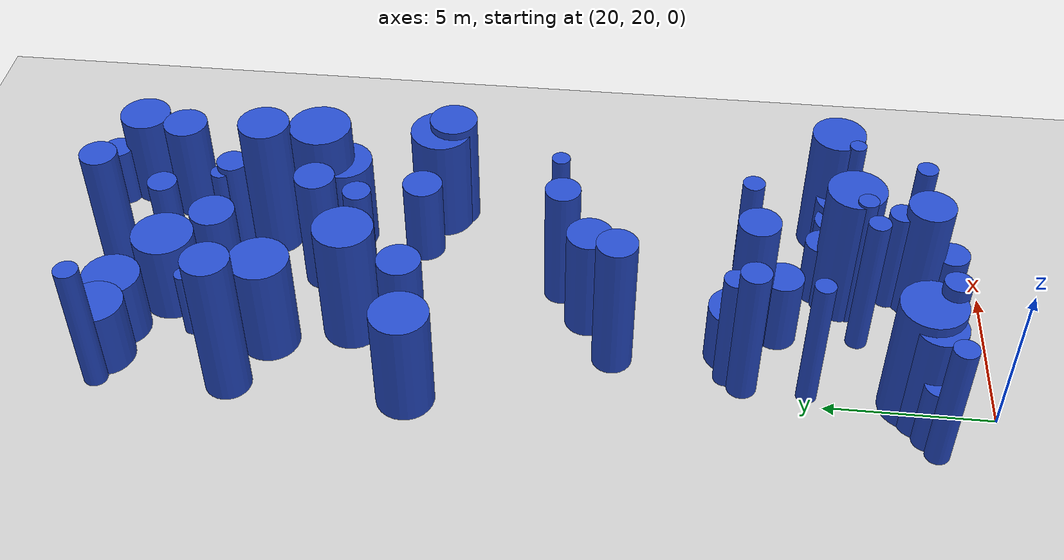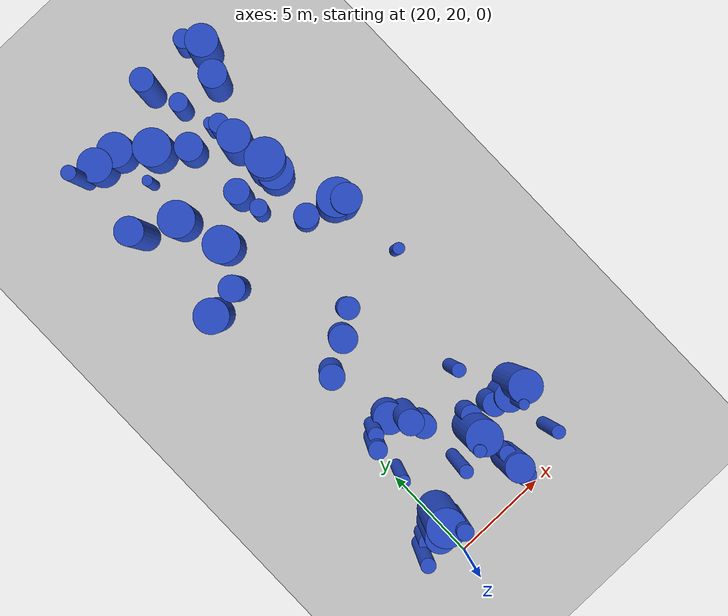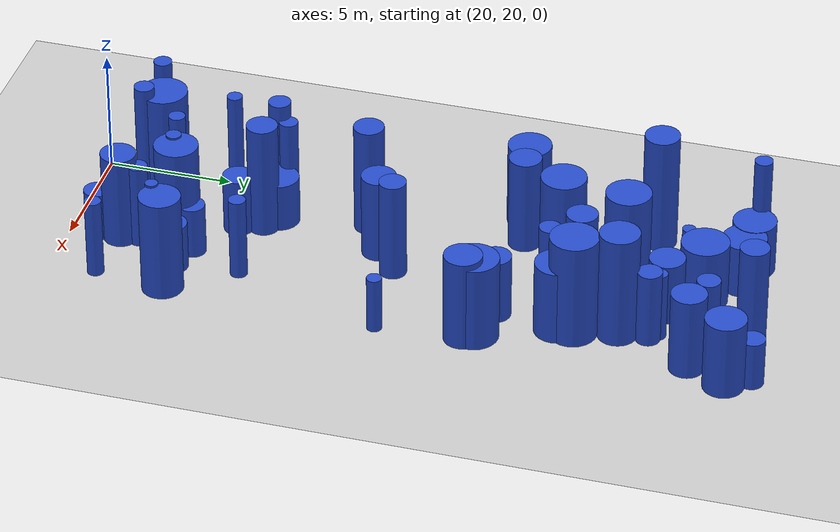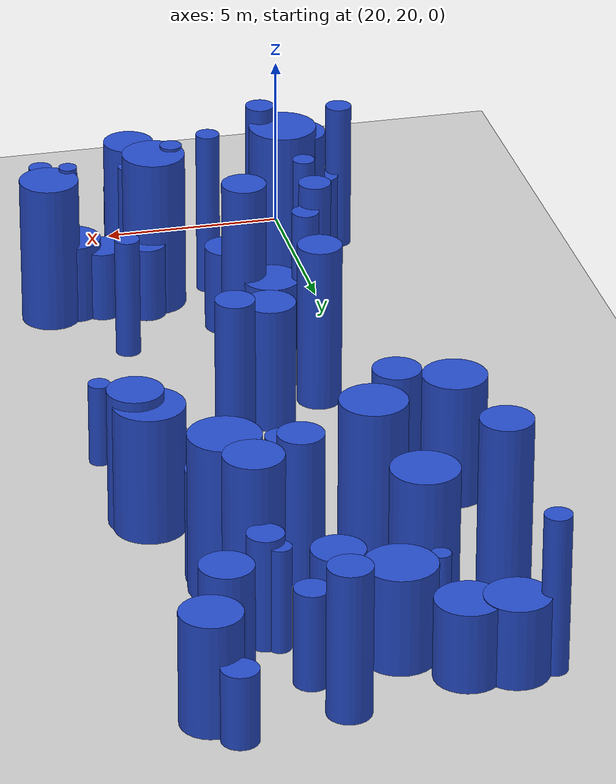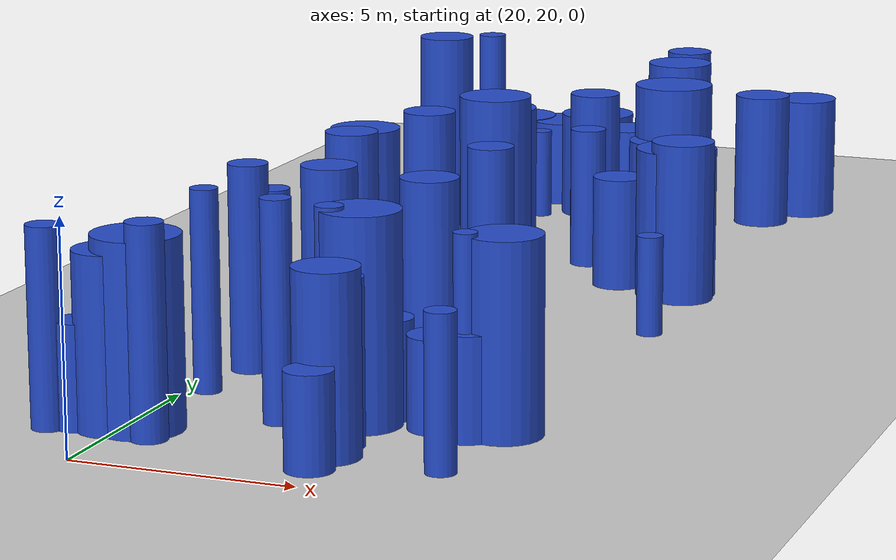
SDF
<sdf version="1.6">
 <world name="default">
  <model name="ground_plane">
   <static>1</static>
   <link name="link">
    <collision name="collision">
     <geometry><plane><normal>0 0 1</normal><size>100 100</size></plane></geometry>
     <surface><friction><ode><mu>100</mu><mu2>50</mu2></ode></friction></surface>
    </collision>
    <visual name="visual">
     <cast_shadows>0</cast_shadows>
     <geometry><plane><normal>0 0 1</normal><size>100 100</size></plane></geometry>
     <material>
      <script><uri>file://media/materials/scripts/gazebo.material</uri><name>Gazebo/Grey</name></script>
     </material>
    </visual>
   </link>
  </model>
  <model name="6">
   <static>0</static>
   <link name="link">
    <inertial>
     <mass>2</mass>
     <inertia><ixx>1.20336</ixx><ixy>0</ixy><ixz>0</ixz><iyy>1.20336</iyy><iyz>0</iyz><izz>0.750486</izz></inertia>
    </inertial>
    <collision name="collision">
     <geometry><cylinder><length>2.22906</length><radius>0.866306</radius></cylinder></geometry>
     <surface><contact><collide_without_contact>1</collide_without_contact></contact></surface>
    </collision>
    <visual name="visual">
     <geometry><cylinder><length>2.22906</length><radius>0.866306</radius></cylinder></geometry>
     <material>
      <script><uri>file://media/materials/scripts/gazebo.material</uri><name>Gazebo/Blue</name></script>
     </material>
    </visual>
    <gravity>0</gravity>
   </link>
   <pose>20.0201 46.401 1.11453 0 -0 0</pose>
  </model>
  <model name="15">
   <static>0</static>
   <link name="link">
    <inertial>
     <mass>2</mass>
     <inertia><ixx>2.62862</ixx><ixy>0</ixy><ixz>0</ixz><iyy>2.62862</iyy><iyz>0</iyz><izz>0.931065</izz></inertia>
    </inertial>
    <collision name="collision">
     <geometry><cylinder><length>3.60257</length><radius>0.964917</radius></cylinder></geometry>
     <surface><contact><collide_without_contact>1</collide_without_contact></contact></surface>
    </collision>
    <visual name="visual">
     <geometry><cylinder><length>3.60257</length><radius>0.964917</radius></cylinder></geometry>
     <material>
      <script><uri>file://media/materials/scripts/gazebo.material</uri><name>Gazebo/Blue</name></script>
     </material>
    </visual>
    <gravity>0</gravity>
   </link>
   <pose>27.3165 37.1361 1.80129 0 -0 0</pose>
  </model>
  <model name="29">
   <static>0</static>
   <link name="link">
    <inertial>
     <mass>2</mass>
     <inertia><ixx>3.4064</ixx><ixy>0</ixy><ixz>0</ixz><iyy>3.4064</iyy><iyz>0</iyz><izz>0.0952166</izz></inertia>
    </inertial>
    <collision name="collision">
     <geometry><cylinder><length>4.48918</length><radius>0.308572</radius></cylinder></geometry>
     <surface><contact><collide_without_contact>1</collide_without_contact></contact></surface>
    </collision>
    <visual name="visual">
     <geometry><cylinder><length>4.48918</length><radius>0.308572</radius></cylinder></geometry>
     <material>
      <script><uri>file://media/materials/scripts/gazebo.material</uri><name>Gazebo/Blue</name></script>
     </material>
    </visual>
    <gravity>0</gravity>
   </link>
   <pose>20.4595 25.4538 2.24459 0 -0 0</pose>
  </model>
  <model name="43">
   <static>0</static>
   <link name="link">
    <inertial>
     <mass>2</mass>
     <inertia>
      <ixx>0.804984</ixx>
      <ixy>0</ixy>
      <ixz>0</ixz>
      <iyy>0.804984</iyy>
      <iyz>0</iyz>
      <izz>0.236242</izz>
     </inertia>
    </inertial>
    <collision name="collision">
     <geometry><cylinder><length>2.03007</length><radius>0.486048</radius></cylinder></geometry>
     <surface><contact><collide_without_contact>1</collide_without_contact></contact></surface>
    </collision>
    <visual name="visual">
     <geometry><cylinder><length>2.03007</length><radius>0.486048</radius></cylinder></geometry>
     <material>
      <script><uri>file://media/materials/scripts/gazebo.material</uri><name>Gazebo/Blue</name></script>
     </material>
    </visual>
    <gravity>0</gravity>
   </link>
   <pose>27.3471 47.9507 1.01503 0 -0 0</pose>
  </model>
  <model name="55">
   <static>0</static>
   <link name="link">
    <inertial>
     <mass>2</mass>
     <inertia><ixx>3.00682</ixx><ixy>0</ixy><ixz>0</ixz><iyy>3.00682</iyy><iyz>0</iyz><izz>0.336828</izz></inertia>
    </inertial>
    <collision name="collision">
     <geometry><cylinder><length>4.1268</length><radius>0.580369</radius></cylinder></geometry>
     <surface><contact><collide_without_contact>1</collide_without_contact></contact></surface>
    </collision>
    <visual name="visual">
     <geometry><cylinder><length>4.1268</length><radius>0.580369</radius></cylinder></geometry>
     <material>
      <script><uri>file://media/materials/scripts/gazebo.material</uri><name>Gazebo/Blue</name></script>
     </material>
    </visual>
    <gravity>0</gravity>
   </link>
   <pose>24.4847 47.3087 2.0634 0 -0 0</pose>
  </model>
  <model name="66">
   <static>0</static>
   <link name="link">
    <inertial>
     <mass>2</mass>
     <inertia><ixx>4.02171</ixx><ixy>0</ixy><ixz>0</ixz><iyy>4.02171</iyy><iyz>0</iyz><izz>0.386224</izz></inertia>
    </inertial>
    <collision name="collision">
     <geometry><cylinder><length>4.79287</length><radius>0.621469</radius></cylinder></geometry>
     <surface><contact><collide_without_contact>1</collide_without_contact></contact></surface>
    </collision>
    <visual name="visual">
     <geometry><cylinder><length>4.79287</length><radius>0.621469</radius></cylinder></geometry>
     <material>
      <script><uri>file://media/materials/scripts/gazebo.material</uri><name>Gazebo/Blue</name></script>
     </material>
    </visual>
    <gravity>0</gravity>
   </link>
   <pose>22.5786 27.2507 2.39644 0 -0 0</pose>
  </model>
  <model name="76">
   <static>0</static>
   <link name="link">
    <inertial>
     <mass>2</mass>
     <inertia><ixx>1.41605</ixx><ixy>0</ixy><ixz>0</ixz><iyy>1.41605</iyy><iyz>0</iyz><izz>0.391763</izz></inertia>
    </inertial>
    <collision name="collision">
     <geometry><cylinder><length>2.70574</length><radius>0.62591</radius></cylinder></geometry>
     <surface><contact><collide_without_contact>1</collide_without_contact></contact></surface>
    </collision>
    <visual name="visual">
     <geometry><cylinder><length>2.70574</length><radius>0.62591</radius></cylinder></geometry>
     <material>
      <script><uri>file://media/materials/scripts/gazebo.material</uri><name>Gazebo/Blue</name></script>
     </material>
    </visual>
    <gravity>0</gravity>
   </link>
   <pose>25.7306 37.5397 1.35287 0 -0 0</pose>
  </model>
  <model name="79">
   <static>0</static>
   <link name="link">
    <inertial>
     <mass>2</mass>
     <inertia><ixx>2.18613</ixx><ixy>0</ixy><ixz>0</ixz><iyy>2.18613</iyy><iyz>0</iyz><izz>0.163149</izz></inertia>
    </inertial>
    <collision name="collision">
     <geometry><cylinder><length>3.5535</length><radius>0.403917</radius></cylinder></geometry>
     <surface><contact><collide_without_contact>1</collide_without_contact></contact></surface>
    </collision>
    <visual name="visual">
     <geometry><cylinder><length>3.5535</length><radius>0.403917</radius></cylinder></geometry>
     <material>
      <script><uri>file://media/materials/scripts/gazebo.material</uri><name>Gazebo/Blue</name></script>
     </material>
    </visual>
    <gravity>0</gravity>
   </link>
   <pose>24.8327 22.8486 1.77675 0 -0 0</pose>
  </model>
  <model name="104">
   <static>0</static>
   <link name="link">
    <inertial>
     <mass>2</mass>
     <inertia><ixx>1.19968</ixx><ixy>0</ixy><ixz>0</ixz><iyy>1.19968</iyy><iyz>0</iyz><izz>0.772075</izz></inertia>
    </inertial>
    <collision name="collision">
     <geometry><cylinder><length>2.2095</length><radius>0.878678</radius></cylinder></geometry>
     <surface><contact><collide_without_contact>1</collide_without_contact></contact></surface>
    </collision>
    <visual name="visual">
     <geometry><cylinder><length>2.2095</length><radius>0.878678</radius></cylinder></geometry>
     <material>
      <script><uri>file://media/materials/scripts/gazebo.material</uri><name>Gazebo/Blue</name></script>
     </material>
    </visual>
    <gravity>0</gravity>
   </link>
   <pose>21.2228 46.2715 1.10475 0 -0 0</pose>
  </model>
  <model name="105">
   <static>0</static>
   <link name="link">
    <inertial>
     <mass>2</mass>
     <inertia><ixx>1.89447</ixx><ixy>0</ixy><ixz>0</ixz><iyy>1.89447</iyy><iyz>0</iyz><izz>0.110969</izz></inertia>
    </inertial>
    <collision name="collision">
     <geometry><cylinder><length>3.32173</length><radius>0.333121</radius></cylinder></geometry>
     <surface><contact><collide_without_contact>1</collide_without_contact></contact></surface>
    </collision>
    <visual name="visual">
     <geometry><cylinder><length>3.32173</length><radius>0.333121</radius></cylinder></geometry>
     <material>
      <script><uri>file://media/materials/scripts/gazebo.material</uri><name>Gazebo/Blue</name></script>
     </material>
    </visual>
    <gravity>0</gravity>
   </link>
   <pose>27.2919 21.8719 1.66087 0 -0 0</pose>
  </model>
  <model name="108">
   <static>0</static>
   <link name="link">
    <inertial>
     <mass>2</mass>
     <inertia>
      <ixx>0.852702</ixx>
      <ixy>0</ixy>
      <ixz>0</ixz>
      <iyy>0.852702</iyy>
      <iyz>0</iyz>
      <izz>0.271627</izz>
     </inertia>
    </inertial>
    <collision name="collision">
     <geometry><cylinder><length>2.07396</length><radius>0.521178</radius></cylinder></geometry>
     <surface><contact><collide_without_contact>1</collide_without_contact></contact></surface>
    </collision>
    <visual name="visual">
     <geometry><cylinder><length>2.07396</length><radius>0.521178</radius></cylinder></geometry>
     <material>
      <script><uri>file://media/materials/scripts/gazebo.material</uri><name>Gazebo/Blue</name></script>
     </material>
    </visual>
    <gravity>0</gravity>
   </link>
   <pose>24.7996 21.1157 1.03698 0 -0 0</pose>
  </model>
  <model name="112">
   <static>0</static>
   <link name="link">
    <inertial>
     <mass>2</mass>
     <inertia>
      <ixx>0.920044</ixx>
      <ixy>0</ixy>
      <ixz>0</ixz>
      <iyy>0.920044</iyy>
      <iyz>0</iyz>
      <izz>0.269733</izz>
     </inertia>
    </inertial>
    <collision name="collision">
     <geometry><cylinder><length>2.1705</length><radius>0.519358</radius></cylinder></geometry>
     <surface><contact><collide_without_contact>1</collide_without_contact></contact></surface>
    </collision>
    <visual name="visual">
     <geometry><cylinder><length>2.1705</length><radius>0.519358</radius></cylinder></geometry>
     <material>
      <script><uri>file://media/materials/scripts/gazebo.material</uri><name>Gazebo/Blue</name></script>
     </material>
    </visual>
    <gravity>0</gravity>
   </link>
   <pose>24.8809 25.067 1.08525 0 -0 0</pose>
  </model>
  <model name="125">
   <static>0</static>
   <link name="link">
    <inertial>
     <mass>2</mass>
     <inertia><ixx>2.05411</ixx><ixy>0</ixy><ixz>0</ixz><iyy>2.05411</iyy><iyz>0</iyz><izz>0.805344</izz></inertia>
    </inertial>
    <collision name="collision">
     <geometry><cylinder><length>3.14779</length><radius>0.897409</radius></cylinder></geometry>
     <surface><contact><collide_without_contact>1</collide_without_contact></contact></surface>
    </collision>
    <visual name="visual">
     <geometry><cylinder><length>3.14779</length><radius>0.897409</radius></cylinder></geometry>
     <material>
      <script><uri>file://media/materials/scripts/gazebo.material</uri><name>Gazebo/Blue</name></script>
     </material>
    </visual>
    <gravity>0</gravity>
   </link>
   <pose>26.1023 40.0757 1.5739 0 -0 0</pose>
  </model>
  <model name="129">
   <static>0</static>
   <link name="link">
    <inertial>
     <mass>2</mass>
     <inertia>
      <ixx>3.18166</ixx>
      <ixy>0</ixy>
      <ixz>0</ixz>
      <iyy>3.18166</iyy>
      <iyz>0</iyz>
      <izz>0.0662156</izz>
     </inertia>
    </inertial>
    <collision name="collision">
     <geometry><cylinder><length>4.34642</length><radius>0.257324</radius></cylinder></geometry>
     <surface><contact><collide_without_contact>1</collide_without_contact></contact></surface>
    </collision>
    <visual name="visual">
     <geometry><cylinder><length>4.34642</length><radius>0.257324</radius></cylinder></geometry>
     <material>
      <script><uri>file://media/materials/scripts/gazebo.material</uri><name>Gazebo/Blue</name></script>
     </material>
    </visual>
    <gravity>0</gravity>
   </link>
   <pose>26.9244 24.1778 2.17321 0 -0 0</pose>
  </model>
  <model name="138">
   <static>0</static>
   <link name="link">
    <inertial>
     <mass>2</mass>
     <inertia><ixx>3.27687</ixx><ixy>0</ixy><ixz>0</ixz><iyy>3.27687</iyy><iyz>0</iyz><izz>0.818625</izz></inertia>
    </inertial>
    <collision name="collision">
     <geometry><cylinder><length>4.14793</length><radius>0.904779</radius></cylinder></geometry>
     <surface><contact><collide_without_contact>1</collide_without_contact></contact></surface>
    </collision>
    <visual name="visual">
     <geometry><cylinder><length>4.14793</length><radius>0.904779</radius></cylinder></geometry>
     <material>
      <script><uri>file://media/materials/scripts/gazebo.material</uri><name>Gazebo/Blue</name></script>
     </material>
    </visual>
    <gravity>0</gravity>
   </link>
   <pose>21.8823 39.2124 2.07397 0 -0 0</pose>
  </model>
  <model name="152">
   <static>0</static>
   <link name="link">
    <inertial>
     <mass>2</mass>
     <inertia><ixx>2.2067</ixx><ixy>0</ixy><ixz>0</ixz><iyy>2.2067</iyy><iyz>0</iyz><izz>0.493138</izz></inertia>
    </inertial>
    <collision name="collision">
     <geometry><cylinder><length>3.4294</length><radius>0.702238</radius></cylinder></geometry>
     <surface><contact><collide_without_contact>1</collide_without_contact></contact></surface>
    </collision>
    <visual name="visual">
     <geometry><cylinder><length>3.4294</length><radius>0.702238</radius></cylinder></geometry>
     <material>
      <script><uri>file://media/materials/scripts/gazebo.material</uri><name>Gazebo/Blue</name></script>
     </material>
    </visual>
    <gravity>0</gravity>
   </link>
   <pose>27.1111 45.4034 1.7147 0 -0 0</pose>
  </model>
  <model name="166">
   <static>0</static>
   <link name="link">
    <inertial>
     <mass>2</mass>
     <inertia><ixx>3.36386</ixx><ixy>0</ixy><ixz>0</ixz><iyy>3.36386</iyy><iyz>0</iyz><izz>0.685961</izz></inertia>
    </inertial>
    <collision name="collision">
     <geometry><cylinder><length>4.25738</length><radius>0.828227</radius></cylinder></geometry>
     <surface><contact><collide_without_contact>1</collide_without_contact></contact></surface>
    </collision>
    <visual name="visual">
     <geometry><cylinder><length>4.25738</length><radius>0.828227</radius></cylinder></geometry>
     <material>
      <script><uri>file://media/materials/scripts/gazebo.material</uri><name>Gazebo/Blue</name></script>
     </material>
    </visual>
    <gravity>0</gravity>
   </link>
   <pose>27.566 24.7086 2.12869 0 -0 0</pose>
  </model>
  <model name="169">
   <static>0</static>
   <link name="link">
    <inertial>
     <mass>2</mass>
     <inertia><ixx>3.76945</ixx><ixy>0</ixy><ixz>0</ixz><iyy>3.76945</iyy><iyz>0</iyz><izz>0.924048</izz></inertia>
    </inertial>
    <collision name="collision">
     <geometry><cylinder><length>4.45473</length><radius>0.961274</radius></cylinder></geometry>
     <surface><contact><collide_without_contact>1</collide_without_contact></contact></surface>
    </collision>
    <visual name="visual">
     <geometry><cylinder><length>4.45473</length><radius>0.961274</radius></cylinder></geometry>
     <material>
      <script><uri>file://media/materials/scripts/gazebo.material</uri><name>Gazebo/Blue</name></script>
     </material>
    </visual>
    <gravity>0</gravity>
   </link>
   <pose>26.111 40.706 2.22736 0 -0 0</pose>
  </model>
  <model name="179">
   <static>0</static>
   <link name="link">
    <inertial>
     <mass>2</mass>
     <inertia><ixx>1.6669</ixx><ixy>0</ixy><ixz>0</ixz><iyy>1.6669</iyy><iyz>0</iyz><izz>0.903977</izz></inertia>
    </inertial>
    <collision name="collision">
     <geometry><cylinder><length>2.69991</length><radius>0.950777</radius></cylinder></geometry>
     <surface><contact><collide_without_contact>1</collide_without_contact></contact></surface>
    </collision>
    <visual name="visual">
     <geometry><cylinder><length>2.69991</length><radius>0.950777</radius></cylinder></geometry>
     <material>
      <script><uri>file://media/materials/scripts/gazebo.material</uri><name>Gazebo/Blue</name></script>
     </material>
    </visual>
    <gravity>0</gravity>
   </link>
   <pose>22.6285 45.0202 1.34995 0 -0 0</pose>
  </model>
  <model name="182">
   <static>0</static>
   <link name="link">
    <inertial>
     <mass>2</mass>
     <inertia>
      <ixx>0.917081</ixx>
      <ixy>0</ixy>
      <ixz>0</ixz>
      <iyy>0.917081</iyy>
      <iyz>0</iyz>
      <izz>0.0700442</izz>
     </inertia>
    </inertial>
    <collision name="collision">
     <geometry><cylinder><length>2.30051</length><radius>0.264659</radius></cylinder></geometry>
     <surface><contact><collide_without_contact>1</collide_without_contact></contact></surface>
    </collision>
    <visual name="visual">
     <geometry><cylinder><length>2.30051</length><radius>0.264659</radius></cylinder></geometry>
     <material>
      <script><uri>file://media/materials/scripts/gazebo.material</uri><name>Gazebo/Blue</name></script>
     </material>
    </visual>
    <gravity>0</gravity>
   </link>
   <pose>21.3585 44.0959 1.15026 0 -0 0</pose>
  </model>
  <model name="204">
   <static>0</static>
   <link name="link">
    <inertial>
     <mass>2</mass>
     <inertia><ixx>3.72467</ixx><ixy>0</ixy><ixz>0</ixz><iyy>3.72467</iyy><iyz>0</iyz><izz>0.201517</izz></inertia>
    </inertial>
    <collision name="collision">
     <geometry><cylinder><length>4.66299</length><radius>0.448906</radius></cylinder></geometry>
     <surface><contact><collide_without_contact>1</collide_without_contact></contact></surface>
    </collision>
    <visual name="visual">
     <geometry><cylinder><length>4.66299</length><radius>0.448906</radius></cylinder></geometry>
     <material>
      <script><uri>file://media/materials/scripts/gazebo.material</uri><name>Gazebo/Blue</name></script>
     </material>
    </visual>
    <gravity>0</gravity>
   </link>
   <pose>20.5993 27.353 2.3315 0 -0 0</pose>
  </model>
  <model name="227">
   <static>0</static>
   <link name="link">
    <inertial>
     <mass>2</mass>
     <inertia><ixx>3.03734</ixx><ixy>0</ixy><ixz>0</ixz><iyy>3.03734</iyy><iyz>0</iyz><izz>0.384395</izz></inertia>
    </inertial>
    <collision name="collision">
     <geometry><cylinder><length>4.13169</length><radius>0.619996</radius></cylinder></geometry>
     <surface><contact><collide_without_contact>1</collide_without_contact></contact></surface>
    </collision>
    <visual name="visual">
     <geometry><cylinder><length>4.13169</length><radius>0.619996</radius></cylinder></geometry>
     <material>
      <script><uri>file://media/materials/scripts/gazebo.material</uri><name>Gazebo/Blue</name></script>
     </material>
    </visual>
    <gravity>0</gravity>
   </link>
   <pose>24.0965 40.5059 2.06584 0 -0 0</pose>
  </model>
  <model name="240">
   <static>0</static>
   <link name="link">
    <inertial>
     <mass>2</mass>
     <inertia><ixx>2.89272</ixx><ixy>0</ixy><ixz>0</ixz><iyy>2.89272</iyy><iyz>0</iyz><izz>0.423857</izz></inertia>
    </inertial>
    <collision name="collision">
     <geometry><cylinder><length>4.01058</length><radius>0.651043</radius></cylinder></geometry>
     <surface><contact><collide_without_contact>1</collide_without_contact></contact></surface>
    </collision>
    <visual name="visual">
     <geometry><cylinder><length>4.01058</length><radius>0.651043</radius></cylinder></geometry>
     <material>
      <script><uri>file://media/materials/scripts/gazebo.material</uri><name>Gazebo/Blue</name></script>
     </material>
    </visual>
    <gravity>0</gravity>
   </link>
   <pose>20.8141 37.4039 2.00529 0 -0 0</pose>
  </model>
  <model name="245">
   <static>0</static>
   <link name="link">
    <inertial>
     <mass>2</mass>
     <inertia><ixx>4.39653</ixx><ixy>0</ixy><ixz>0</ixz><iyy>4.39653</iyy><iyz>0</iyz><izz>0.490635</izz></inertia>
    </inertial>
    <collision name="collision">
     <geometry><cylinder><length>4.99072</length><radius>0.700453</radius></cylinder></geometry>
     <surface><contact><collide_without_contact>1</collide_without_contact></contact></surface>
    </collision>
    <visual name="visual">
     <geometry><cylinder><length>4.99072</length><radius>0.700453</radius></cylinder></geometry>
     <material>
      <script><uri>file://media/materials/scripts/gazebo.material</uri><name>Gazebo/Blue</name></script>
     </material>
    </visual>
    <gravity>0</gravity>
   </link>
   <pose>19.2727 42.471 2.49536 0 -0 0</pose>
  </model>
  <model name="249">
   <static>0</static>
   <link name="link">
    <inertial>
     <mass>2</mass>
     <inertia><ixx>1.94683</ixx><ixy>0</ixy><ixz>0</ixz><iyy>1.94683</iyy><iyz>0</iyz><izz>0.657921</izz></inertia>
    </inertial>
    <collision name="collision">
     <geometry><cylinder><length>3.11564</length><radius>0.811123</radius></cylinder></geometry>
     <surface><contact><collide_without_contact>1</collide_without_contact></contact></surface>
    </collision>
    <visual name="visual">
     <geometry><cylinder><length>3.11564</length><radius>0.811123</radius></cylinder></geometry>
     <material>
      <script><uri>file://media/materials/scripts/gazebo.material</uri><name>Gazebo/Blue</name></script>
     </material>
    </visual>
    <gravity>0</gravity>
   </link>
   <pose>27.8472 46.9874 1.55782 0 -0 0</pose>
  </model>
  <model name="255">
   <static>0</static>
   <link name="link">
    <inertial>
     <mass>2</mass>
     <inertia><ixx>1.45518</ixx><ixy>0</ixy><ixz>0</ixz><iyy>1.45518</iyy><iyz>0</iyz><izz>0.090619</izz></inertia>
    </inertial>
    <collision name="collision">
     <geometry><cylinder><length>2.90848</length><radius>0.30103</radius></cylinder></geometry>
     <surface><contact><collide_without_contact>1</collide_without_contact></contact></surface>
    </collision>
    <visual name="visual">
     <geometry><cylinder><length>2.90848</length><radius>0.30103</radius></cylinder></geometry>
     <material>
      <script><uri>file://media/materials/scripts/gazebo.material</uri><name>Gazebo/Blue</name></script>
     </material>
    </visual>
    <gravity>0</gravity>
   </link>
   <pose>25.4226 43.908 1.45424 0 -0 0</pose>
  </model>
  <model name="267">
   <static>0</static>
   <link name="link">
    <inertial>
     <mass>2</mass>
     <inertia><ixx>3.30653</ixx><ixy>0</ixy><ixz>0</ixz><iyy>3.30653</iyy><iyz>0</iyz><izz>0.377952</izz></inertia>
    </inertial>
    <collision name="collision">
     <geometry><cylinder><length>4.32497</length><radius>0.614778</radius></cylinder></geometry>
     <surface><contact><collide_without_contact>1</collide_without_contact></contact></surface>
    </collision>
    <visual name="visual">
     <geometry><cylinder><length>4.32497</length><radius>0.614778</radius></cylinder></geometry>
     <material>
      <script><uri>file://media/materials/scripts/gazebo.material</uri><name>Gazebo/Blue</name></script>
     </material>
    </visual>
    <gravity>0</gravity>
   </link>
   <pose>24.5878 24.3649 2.16248 0 -0 0</pose>
  </model>
  <model name="274">
   <static>0</static>
   <link name="link">
    <inertial>
     <mass>2</mass>
     <inertia><ixx>2.72673</ixx><ixy>0</ixy><ixz>0</ixz><iyy>2.72673</iyy><iyz>0</iyz><izz>0.54529</izz></inertia>
    </inertial>
    <collision name="collision">
     <geometry><cylinder><length>3.83726</length><radius>0.738438</radius></cylinder></geometry>
     <surface><contact><collide_without_contact>1</collide_without_contact></contact></surface>
    </collision>
    <visual name="visual">
     <geometry><cylinder><length>3.83726</length><radius>0.738438</radius></cylinder></geometry>
     <material>
      <script><uri>file://media/materials/scripts/gazebo.material</uri><name>Gazebo/Blue</name></script>
     </material>
    </visual>
    <gravity>0</gravity>
   </link>
   <pose>19.8207 22.2289 1.91863 0 -0 0</pose>
  </model>
  <model name="281">
   <static>0</static>
   <link name="link">
    <inertial>
     <mass>2</mass>
     <inertia><ixx>4.01565</ixx><ixy>0</ixy><ixz>0</ixz><iyy>4.01565</iyy><iyz>0</iyz><izz>0.632144</izz></inertia>
    </inertial>
    <collision name="collision">
     <geometry><cylinder><length>4.71142</length><radius>0.795075</radius></cylinder></geometry>
     <surface><contact><collide_without_contact>1</collide_without_contact></contact></surface>
    </collision>
    <visual name="visual">
     <geometry><cylinder><length>4.71142</length><radius>0.795075</radius></cylinder></geometry>
     <material>
      <script><uri>file://media/materials/scripts/gazebo.material</uri><name>Gazebo/Blue</name></script>
     </material>
    </visual>
    <gravity>0</gravity>
   </link>
   <pose>25.7464 42.3741 2.35571 0 -0 0</pose>
  </model>
  <model name="282">
   <static>0</static>
   <link name="link">
    <inertial>
     <mass>2</mass>
     <inertia><ixx>1.75616</ixx><ixy>0</ixy><ixz>0</ixz><iyy>1.75616</iyy><iyz>0</iyz><izz>0.238233</izz></inertia>
    </inertial>
    <collision name="collision">
     <geometry><cylinder><length>3.13405</length><radius>0.488092</radius></cylinder></geometry>
     <surface><contact><collide_without_contact>1</collide_without_contact></contact></surface>
    </collision>
    <visual name="visual">
     <geometry><cylinder><length>3.13405</length><radius>0.488092</radius></cylinder></geometry>
     <material>
      <script><uri>file://media/materials/scripts/gazebo.material</uri><name>Gazebo/Blue</name></script>
     </material>
    </visual>
    <gravity>0</gravity>
   </link>
   <pose>25.7193 43.5671 1.56703 0 -0 0</pose>
  </model>
  <model name="284">
   <static>0</static>
   <link name="link">
    <inertial>
     <mass>2</mass>
     <inertia><ixx>1.38795</ixx><ixy>0</ixy><ixz>0</ixz><iyy>1.38795</iyy><iyz>0</iyz><izz>0.504841</izz></inertia>
    </inertial>
    <collision name="collision">
     <geometry><cylinder><length>2.6102</length><radius>0.710522</radius></cylinder></geometry>
     <surface><contact><collide_without_contact>1</collide_without_contact></contact></surface>
    </collision>
    <visual name="visual">
     <geometry><cylinder><length>2.6102</length><radius>0.710522</radius></cylinder></geometry>
     <material>
      <script><uri>file://media/materials/scripts/gazebo.material</uri><name>Gazebo/Blue</name></script>
     </material>
    </visual>
    <gravity>0</gravity>
   </link>
   <pose>23.9261 43.8389 1.3051 0 -0 0</pose>
  </model>
  <model name="294">
   <static>0</static>
   <link name="link">
    <inertial>
     <mass>2</mass>
     <inertia><ixx>2.30711</ixx><ixy>0</ixy><ixz>0</ixz><iyy>2.30711</iyy><iyz>0</iyz><izz>0.830447</izz></inertia>
    </inertial>
    <collision name="collision">
     <geometry><cylinder><length>3.36917</length><radius>0.911289</radius></cylinder></geometry>
     <surface><contact><collide_without_contact>1</collide_without_contact></contact></surface>
    </collision>
    <visual name="visual">
     <geometry><cylinder><length>3.36917</length><radius>0.911289</radius></cylinder></geometry>
     <material>
      <script><uri>file://media/materials/scripts/gazebo.material</uri><name>Gazebo/Blue</name></script>
     </material>
    </visual>
    <gravity>0</gravity>
   </link>
   <pose>21.136 41.6213 1.68458 0 -0 0</pose>
  </model>
  <model name="297">
   <static>0</static>
   <link name="link">
    <inertial>
     <mass>2</mass>
     <inertia><ixx>3.89511</ixx><ixy>0</ixy><ixz>0</ixz><iyy>3.89511</iyy><iyz>0</iyz><izz>0.10947</izz></inertia>
    </inertial>
    <collision name="collision">
     <geometry><cylinder><length>4.80023</length><radius>0.330862</radius></cylinder></geometry>
     <surface><contact><collide_without_contact>1</collide_without_contact></contact></surface>
    </collision>
    <visual name="visual">
     <geometry><cylinder><length>4.80023</length><radius>0.330862</radius></cylinder></geometry>
     <material>
      <script><uri>file://media/materials/scripts/gazebo.material</uri><name>Gazebo/Blue</name></script>
     </material>
    </visual>
    <gravity>0</gravity>
   </link>
   <pose>22.8658 23.8674 2.40012 0 -0 0</pose>
  </model>
  <model name="316">
   <static>0</static>
   <link name="link">
    <inertial>
     <mass>2</mass>
     <inertia>
      <ixx>0.950531</ixx>
      <ixy>0</ixy>
      <ixz>0</ixz>
      <iyy>0.950531</iyy>
      <iyz>0</iyz>
      <izz>0.0896685</izz>
     </inertia>
    </inertial>
    <collision name="collision">
     <geometry><cylinder><length>2.33113</length><radius>0.299447</radius></cylinder></geometry>
     <surface><contact><collide_without_contact>1</collide_without_contact></contact></surface>
    </collision>
    <visual name="visual">
     <geometry><cylinder><length>2.33113</length><radius>0.299447</radius></cylinder></geometry>
     <material>
      <script><uri>file://media/materials/scripts/gazebo.material</uri><name>Gazebo/Blue</name></script>
     </material>
    </visual>
    <gravity>0</gravity>
   </link>
   <pose>27.8899 33.3473 1.16557 0 -0 0</pose>
  </model>
  <model name="329">
   <static>0</static>
   <link name="link">
    <inertial>
     <mass>2</mass>
     <inertia><ixx>3.57148</ixx><ixy>0</ixy><ixz>0</ixz><iyy>3.57148</iyy><iyz>0</iyz><izz>0.164655</izz></inertia>
    </inertial>
    <collision name="collision">
     <geometry><cylinder><length>4.57547</length><radius>0.405777</radius></cylinder></geometry>
     <surface><contact><collide_without_contact>1</collide_without_contact></contact></surface>
    </collision>
    <visual name="visual">
     <geometry><cylinder><length>4.57547</length><radius>0.405777</radius></cylinder></geometry>
     <material>
      <script><uri>file://media/materials/scripts/gazebo.material</uri><name>Gazebo/Blue</name></script>
     </material>
    </visual>
    <gravity>0</gravity>
   </link>
   <pose>20.8945 21.8308 2.28774 0 -0 0</pose>
  </model>
  <model name="332">
   <static>0</static>
   <link name="link">
    <inertial>
     <mass>2</mass>
     <inertia>
      <ixx>1.55838</ixx>
      <ixy>0</ixy>
      <ixz>0</ixz>
      <iyy>1.55838</iyy>
      <iyz>0</iyz>
      <izz>0.0960512</izz>
     </inertia>
    </inertial>
    <collision name="collision">
     <geometry><cylinder><length>3.01034</length><radius>0.309921</radius></cylinder></geometry>
     <surface><contact><collide_without_contact>1</collide_without_contact></contact></surface>
    </collision>
    <visual name="visual">
     <geometry><cylinder><length>3.01034</length><radius>0.309921</radius></cylinder></geometry>
     <material>
      <script><uri>file://media/materials/scripts/gazebo.material</uri><name>Gazebo/Blue</name></script>
     </material>
    </visual>
    <gravity>0</gravity>
   </link>
   <pose>23.9992 24.036 1.50517 0 -0 0</pose>
  </model>
  <model name="346">
   <static>0</static>
   <link name="link">
    <inertial>
     <mass>2</mass>
     <inertia><ixx>1.15119</ixx><ixy>0</ixy><ixz>0</ixz><iyy>1.15119</iyy><iyz>0</iyz><izz>0.576491</izz></inertia>
    </inertial>
    <collision name="collision">
     <geometry><cylinder><length>2.27544</length><radius>0.75927</radius></cylinder></geometry>
     <surface><contact><collide_without_contact>1</collide_without_contact></contact></surface>
    </collision>
    <visual name="visual">
     <geometry><cylinder><length>2.27544</length><radius>0.75927</radius></cylinder></geometry>
     <material>
      <script><uri>file://media/materials/scripts/gazebo.material</uri><name>Gazebo/Blue</name></script>
     </material>
    </visual>
    <gravity>0</gravity>
   </link>
   <pose>26.847 24.4455 1.13772 0 -0 0</pose>
  </model>
  <model name="366">
   <static>0</static>
   <link name="link">
    <inertial>
     <mass>2</mass>
     <inertia><ixx>2.37374</ixx><ixy>0</ixy><ixz>0</ixz><iyy>2.37374</iyy><iyz>0</iyz><izz>0.486234</izz></inertia>
    </inertial>
    <collision name="collision">
     <geometry><cylinder><length>3.57543</length><radius>0.697305</radius></cylinder></geometry>
     <surface><contact><collide_without_contact>1</collide_without_contact></contact></surface>
    </collision>
    <visual name="visual">
     <geometry><cylinder><length>3.57543</length><radius>0.697305</radius></cylinder></geometry>
     <material>
      <script><uri>file://media/materials/scripts/gazebo.material</uri><name>Gazebo/Blue</name></script>
     </material>
    </visual>
    <gravity>0</gravity>
   </link>
   <pose>22.9528 32.0941 1.78772 0 -0 0</pose>
  </model>
  <model name="367">
   <static>0</static>
   <link name="link">
    <inertial>
     <mass>2</mass>
     <inertia><ixx>3.10741</ixx><ixy>0</ixy><ixz>0</ixz><iyy>3.10741</iyy><iyz>0</iyz><izz>0.29368</izz></inertia>
    </inertial>
    <collision name="collision">
     <geometry><cylinder><length>4.21466</length><radius>0.541922</radius></cylinder></geometry>
     <surface><contact><collide_without_contact>1</collide_without_contact></contact></surface>
    </collision>
    <visual name="visual">
     <geometry><cylinder><length>4.21466</length><radius>0.541922</radius></cylinder></geometry>
     <material>
      <script><uri>file://media/materials/scripts/gazebo.material</uri><name>Gazebo/Blue</name></script>
     </material>
    </visual>
    <gravity>0</gravity>
   </link>
   <pose>24.1173 32.9899 2.10733 0 -0 0</pose>
  </model>
  <model name="375">
   <static>0</static>
   <link name="link">
    <inertial>
     <mass>2</mass>
     <inertia><ixx>0.86467</ixx><ixy>0</ixy><ixz>0</ixz><iyy>0.86467</iyy><iyz>0</iyz><izz>0.369977</izz></inertia>
    </inertial>
    <collision name="collision">
     <geometry><cylinder><length>2.01943</length><radius>0.608257</radius></cylinder></geometry>
     <surface><contact><collide_without_contact>1</collide_without_contact></contact></surface>
    </collision>
    <visual name="visual">
     <geometry><cylinder><length>2.01943</length><radius>0.608257</radius></cylinder></geometry>
     <material>
      <script><uri>file://media/materials/scripts/gazebo.material</uri><name>Gazebo/Blue</name></script>
     </material>
    </visual>
    <gravity>0</gravity>
   </link>
   <pose>26.0831 24.6377 1.00971 0 -0 0</pose>
  </model>
  <model name="376">
   <static>0</static>
   <link name="link">
    <inertial>
     <mass>2</mass>
     <inertia><ixx>2.78554</ixx><ixy>0</ixy><ixz>0</ixz><iyy>2.78554</iyy><iyz>0</iyz><izz>0.14161</izz></inertia>
    </inertial>
    <collision name="collision">
     <geometry><cylinder><length>4.03589</length><radius>0.376311</radius></cylinder></geometry>
     <surface><contact><collide_without_contact>1</collide_without_contact></contact></surface>
    </collision>
    <visual name="visual">
     <geometry><cylinder><length>4.03589</length><radius>0.376311</radius></cylinder></geometry>
     <material>
      <script><uri>file://media/materials/scripts/gazebo.material</uri><name>Gazebo/Blue</name></script>
     </material>
    </visual>
    <gravity>0</gravity>
   </link>
   <pose>20.9738 27.8255 2.01795 0 -0 0</pose>
  </model>
  <model name="384">
   <static>0</static>
   <link name="link">
    <inertial>
     <mass>2</mass>
     <inertia>
      <ixx>3.69452</ixx>
      <ixy>0</ixy>
      <ixz>0</ixz>
      <iyy>3.69452</iyy>
      <iyz>0</iyz>
      <izz>0.0949327</izz>
     </inertia>
    </inertial>
    <collision name="collision">
     <geometry><cylinder><length>4.67785</length><radius>0.308111</radius></cylinder></geometry>
     <surface><contact><collide_without_contact>1</collide_without_contact></contact></surface>
    </collision>
    <visual name="visual">
     <geometry><cylinder><length>4.67785</length><radius>0.308111</radius></cylinder></geometry>
     <material>
      <script><uri>file://media/materials/scripts/gazebo.material</uri><name>Gazebo/Blue</name></script>
     </material>
    </visual>
    <gravity>0</gravity>
   </link>
   <pose>23.9653 24.0946 2.33893 0 -0 0</pose>
  </model>
  <model name="387">
   <static>0</static>
   <link name="link">
    <inertial>
     <mass>2</mass>
     <inertia><ixx>2.76944</ixx><ixy>0</ixy><ixz>0</ixz><iyy>2.76944</iyy><iyz>0</iyz><izz>0.567001</izz></inertia>
    </inertial>
    <collision name="collision">
     <geometry><cylinder><length>3.86208</length><radius>0.752995</radius></cylinder></geometry>
     <surface><contact><collide_without_contact>1</collide_without_contact></contact></surface>
    </collision>
    <visual name="visual">
     <geometry><cylinder><length>3.86208</length><radius>0.752995</radius></cylinder></geometry>
     <material>
      <script><uri>file://media/materials/scripts/gazebo.material</uri><name>Gazebo/Blue</name></script>
     </material>
    </visual>
    <gravity>0</gravity>
   </link>
   <pose>27.5953 36.7652 1.93104 0 -0 0</pose>
  </model>
  <model name="392">
   <static>0</static>
   <link name="link">
    <inertial>
     <mass>2</mass>
     <inertia>
      <ixx>0.990256</ixx>
      <ixy>0</ixy>
      <ixz>0</ixz>
      <iyy>0.990256</iyy>
      <iyz>0</iyz>
      <izz>0.206088</izz>
     </inertia>
    </inertial>
    <collision name="collision">
     <geometry><cylinder><length>2.30722</length><radius>0.453969</radius></cylinder></geometry>
     <surface><contact><collide_without_contact>1</collide_without_contact></contact></surface>
    </collision>
    <visual name="visual">
     <geometry><cylinder><length>2.30722</length><radius>0.453969</radius></cylinder></geometry>
     <material>
      <script><uri>file://media/materials/scripts/gazebo.material</uri><name>Gazebo/Blue</name></script>
     </material>
    </visual>
    <gravity>0</gravity>
   </link>
   <pose>19.1122 22.0794 1.15361 0 -0 0</pose>
  </model>
  <model name="417">
   <static>0</static>
   <link name="link">
    <inertial>
     <mass>2</mass>
     <inertia><ixx>2.07932</ixx><ixy>0</ixy><ixz>0</ixz><iyy>2.07932</iyy><iyz>0</iyz><izz>0.190381</izz></inertia>
    </inertial>
    <collision name="collision">
     <geometry><cylinder><length>3.45033</length><radius>0.436326</radius></cylinder></geometry>
     <surface><contact><collide_without_contact>1</collide_without_contact></contact></surface>
    </collision>
    <visual name="visual">
     <geometry><cylinder><length>3.45033</length><radius>0.436326</radius></cylinder></geometry>
     <material>
      <script><uri>file://media/materials/scripts/gazebo.material</uri><name>Gazebo/Blue</name></script>
     </material>
    </visual>
    <gravity>0</gravity>
   </link>
   <pose>24.3256 39.3147 1.72517 0 -0 0</pose>
  </model>
  <model name="422">
   <static>0</static>
   <link name="link">
    <inertial>
     <mass>2</mass>
     <inertia><ixx>3.91073</ixx><ixy>0</ixy><ixz>0</ixz><iyy>3.91073</iyy><iyz>0</iyz><izz>0.776943</izz></inertia>
    </inertial>
    <collision name="collision">
     <geometry><cylinder><length>4.59712</length><radius>0.881444</radius></cylinder></geometry>
     <surface><contact><collide_without_contact>1</collide_without_contact></contact></surface>
    </collision>
    <visual name="visual">
     <geometry><cylinder><length>4.59712</length><radius>0.881444</radius></cylinder></geometry>
     <material>
      <script><uri>file://media/materials/scripts/gazebo.material</uri><name>Gazebo/Blue</name></script>
     </material>
    </visual>
    <gravity>0</gravity>
   </link>
   <pose>24.5267 24.3715 2.29856 0 -0 0</pose>
  </model>
  <model name="429">
   <static>0</static>
   <link name="link">
    <inertial>
     <mass>2</mass>
     <inertia><ixx>2.44932</ixx><ixy>0</ixy><ixz>0</ixz><iyy>2.44932</iyy><iyz>0</iyz><izz>0.759626</izz></inertia>
    </inertial>
    <collision name="collision">
     <geometry><cylinder><length>3.52378</length><radius>0.871565</radius></cylinder></geometry>
     <surface><contact><collide_without_contact>1</collide_without_contact></contact></surface>
    </collision>
    <visual name="visual">
     <geometry><cylinder><length>3.52378</length><radius>0.871565</radius></cylinder></geometry>
     <material>
      <script><uri>file://media/materials/scripts/gazebo.material</uri><name>Gazebo/Blue</name></script>
     </material>
    </visual>
    <gravity>0</gravity>
   </link>
   <pose>19.1872 37.1579 1.76189 0 -0 0</pose>
  </model>
  <model name="434">
   <static>0</static>
   <link name="link">
    <inertial>
     <mass>2</mass>
     <inertia><ixx>3.86498</ixx><ixy>0</ixy><ixz>0</ixz><iyy>3.86498</iyy><iyz>0</iyz><izz>0.372214</izz></inertia>
    </inertial>
    <collision name="collision">
     <geometry><cylinder><length>4.69821</length><radius>0.610093</radius></cylinder></geometry>
     <surface><contact><collide_without_contact>1</collide_without_contact></contact></surface>
    </collision>
    <visual name="visual">
     <geometry><cylinder><length>4.69821</length><radius>0.610093</radius></cylinder></geometry>
     <material>
      <script><uri>file://media/materials/scripts/gazebo.material</uri><name>Gazebo/Blue</name></script>
     </material>
    </visual>
    <gravity>0</gravity>
   </link>
   <pose>21.3853 31.2362 2.34911 0 -0 0</pose>
  </model>
  <model name="444">
   <static>0</static>
   <link name="link">
    <inertial>
     <mass>2</mass>
     <inertia><ixx>1.3091</ixx><ixy>0</ixy><ixz>0</ixz><iyy>1.3091</iyy><iyz>0</iyz><izz>0.218409</izz></inertia>
    </inertial>
    <collision name="collision">
     <geometry><cylinder><length>2.68317</length><radius>0.467342</radius></cylinder></geometry>
     <surface><contact><collide_without_contact>1</collide_without_contact></contact></surface>
    </collision>
    <visual name="visual">
     <geometry><cylinder><length>2.68317</length><radius>0.467342</radius></cylinder></geometry>
     <material>
      <script><uri>file://media/materials/scripts/gazebo.material</uri><name>Gazebo/Blue</name></script>
     </material>
    </visual>
    <gravity>0</gravity>
   </link>
   <pose>25.0417 45.709 1.34158 0 -0 0</pose>
  </model>
  <model name="445">
   <static>0</static>
   <link name="link">
    <inertial>
     <mass>2</mass>
     <inertia><ixx>3.33963</ixx><ixy>0</ixy><ixz>0</ixz><iyy>3.33963</iyy><iyz>0</iyz><izz>0.916756</izz></inertia>
    </inertial>
    <collision name="collision">
     <geometry><cylinder><length>4.15782</length><radius>0.957474</radius></cylinder></geometry>
     <surface><contact><collide_without_contact>1</collide_without_contact></contact></surface>
    </collision>
    <visual name="visual">
     <geometry><cylinder><length>4.15782</length><radius>0.957474</radius></cylinder></geometry>
     <material>
      <script><uri>file://media/materials/scripts/gazebo.material</uri><name>Gazebo/Blue</name></script>
     </material>
    </visual>
    <gravity>0</gravity>
   </link>
   <pose>20.3723 22.4594 2.07891 0 -0 0</pose>
  </model>
  <model name="446">
   <static>0</static>
   <link name="link">
    <inertial>
     <mass>2</mass>
     <inertia><ixx>3.29056</ixx><ixy>0</ixy><ixz>0</ixz><iyy>3.29056</iyy><iyz>0</iyz><izz>0.130028</izz></inertia>
    </inertial>
    <collision name="collision">
     <geometry><cylinder><length>4.39924</length><radius>0.360594</radius></cylinder></geometry>
     <surface><contact><collide_without_contact>1</collide_without_contact></contact></surface>
    </collision>
    <visual name="visual">
     <geometry><cylinder><length>4.39924</length><radius>0.360594</radius></cylinder></geometry>
     <material>
      <script><uri>file://media/materials/scripts/gazebo.material</uri><name>Gazebo/Blue</name></script>
     </material>
    </visual>
    <gravity>0</gravity>
   </link>
   <pose>19.0597 46.4513 2.19962 0 -0 0</pose>
  </model>
  <model name="448">
   <static>0</static>
   <link name="link">
    <inertial>
     <mass>2</mass>
     <inertia><ixx>2.06253</ixx><ixy>0</ixy><ixz>0</ixz><iyy>2.06253</iyy><iyz>0</iyz><izz>0.119029</izz></inertia>
    </inertial>
    <collision name="collision">
     <geometry><cylinder><length>3.46671</length><radius>0.345006</radius></cylinder></geometry>
     <surface><contact><collide_without_contact>1</collide_without_contact></contact></surface>
    </collision>
    <visual name="visual">
     <geometry><cylinder><length>3.46671</length><radius>0.345006</radius></cylinder></geometry>
     <material>
      <script><uri>file://media/materials/scripts/gazebo.material</uri><name>Gazebo/Blue</name></script>
     </material>
    </visual>
    <gravity>0</gravity>
   </link>
   <pose>25.8824 27.2641 1.73336 0 -0 0</pose>
  </model>
  <model name="458">
   <static>0</static>
   <link name="link">
    <inertial>
     <mass>2</mass>
     <inertia><ixx>3.19419</ixx><ixy>0</ixy><ixz>0</ixz><iyy>3.19419</iyy><iyz>0</iyz><izz>0.13483</izz></inertia>
    </inertial>
    <collision name="collision">
     <geometry><cylinder><length>4.33136</length><radius>0.367192</radius></cylinder></geometry>
     <surface><contact><collide_without_contact>1</collide_without_contact></contact></surface>
    </collision>
    <visual name="visual">
     <geometry><cylinder><length>4.33136</length><radius>0.367192</radius></cylinder></geometry>
     <material>
      <script><uri>file://media/materials/scripts/gazebo.material</uri><name>Gazebo/Blue</name></script>
     </material>
    </visual>
    <gravity>0</gravity>
   </link>
   <pose>18.5775 21.826 2.16568 0 -0 0</pose>
  </model>
  <model name="470">
   <static>0</static>
   <link name="link">
    <inertial>
     <mass>2</mass>
     <inertia><ixx>2.8492</ixx><ixy>0</ixy><ixz>0</ixz><iyy>2.8492</iyy><iyz>0</iyz><izz>0.505329</izz></inertia>
    </inertial>
    <collision name="collision">
     <geometry><cylinder><length>3.94705</length><radius>0.710865</radius></cylinder></geometry>
     <surface><contact><collide_without_contact>1</collide_without_contact></contact></surface>
    </collision>
    <visual name="visual">
     <geometry><cylinder><length>3.94705</length><radius>0.710865</radius></cylinder></geometry>
     <material>
      <script><uri>file://media/materials/scripts/gazebo.material</uri><name>Gazebo/Blue</name></script>
     </material>
    </visual>
    <gravity>0</gravity>
   </link>
   <pose>24.7762 22.0605 1.97353 0 -0 0</pose>
  </model>
  <model name="487">
   <static>0</static>
   <link name="link">
    <inertial>
     <mass>2</mass>
     <inertia><ixx>1.20512</ixx><ixy>0</ixy><ixz>0</ixz><iyy>1.20512</iyy><iyz>0</iyz><izz>0.381075</izz></inertia>
    </inertial>
    <collision name="collision">
     <geometry><cylinder><length>2.46728</length><radius>0.617312</radius></cylinder></geometry>
     <surface><contact><collide_without_contact>1</collide_without_contact></contact></surface>
    </collision>
    <visual name="visual">
     <geometry><cylinder><length>2.46728</length><radius>0.617312</radius></cylinder></geometry>
     <material>
      <script><uri>file://media/materials/scripts/gazebo.material</uri><name>Gazebo/Blue</name></script>
     </material>
    </visual>
    <gravity>0</gravity>
   </link>
   <pose>22.864 26.316 1.23364 0 -0 0</pose>
  </model>
  <model name="496">
   <static>0</static>
   <link name="link">
    <inertial>
     <mass>2</mass>
     <inertia><ixx>1.02014</ixx><ixy>0</ixy><ixz>0</ixz><iyy>1.02014</iyy><iyz>0</iyz><izz>0.651549</izz></inertia>
    </inertial>
    <collision name="collision">
     <geometry><cylinder><length>2.04113</length><radius>0.807186</radius></cylinder></geometry>
     <surface><contact><collide_without_contact>1</collide_without_contact></contact></surface>
    </collision>
    <visual name="visual">
     <geometry><cylinder><length>2.04113</length><radius>0.807186</radius></cylinder></geometry>
     <material>
      <script><uri>file://media/materials/scripts/gazebo.material</uri><name>Gazebo/Blue</name></script>
     </material>
    </visual>
    <gravity>0</gravity>
   </link>
   <pose>21.9046 27.6866 1.02057 0 -0 0</pose>
  </model>
 </world>
</sdf>
